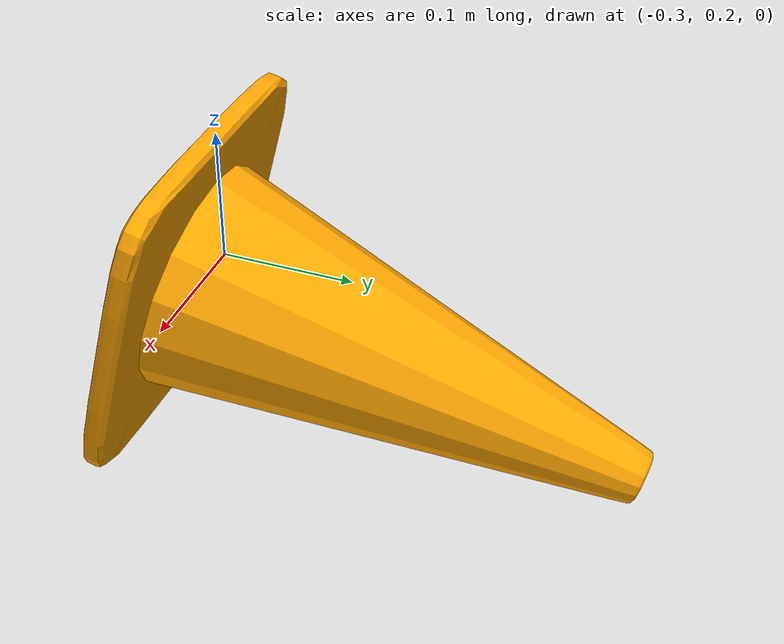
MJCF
<mujoco model="mesh_model">
        <asset>
            <mesh name="traffic_cone" file="traffic_cone.obj" scale="0.1 0.1 0.1"/>
        </asset>
        <worldbody>
            <body>
                <geom type="mesh" mesh="traffic_cone" contype="0" conaffinity="0" rgba="1 0.647 0 1" pos="-0.15 0.25 0.1" euler="-15 0 0"/>
            </body>
        </worldbody>
    </mujoco>
